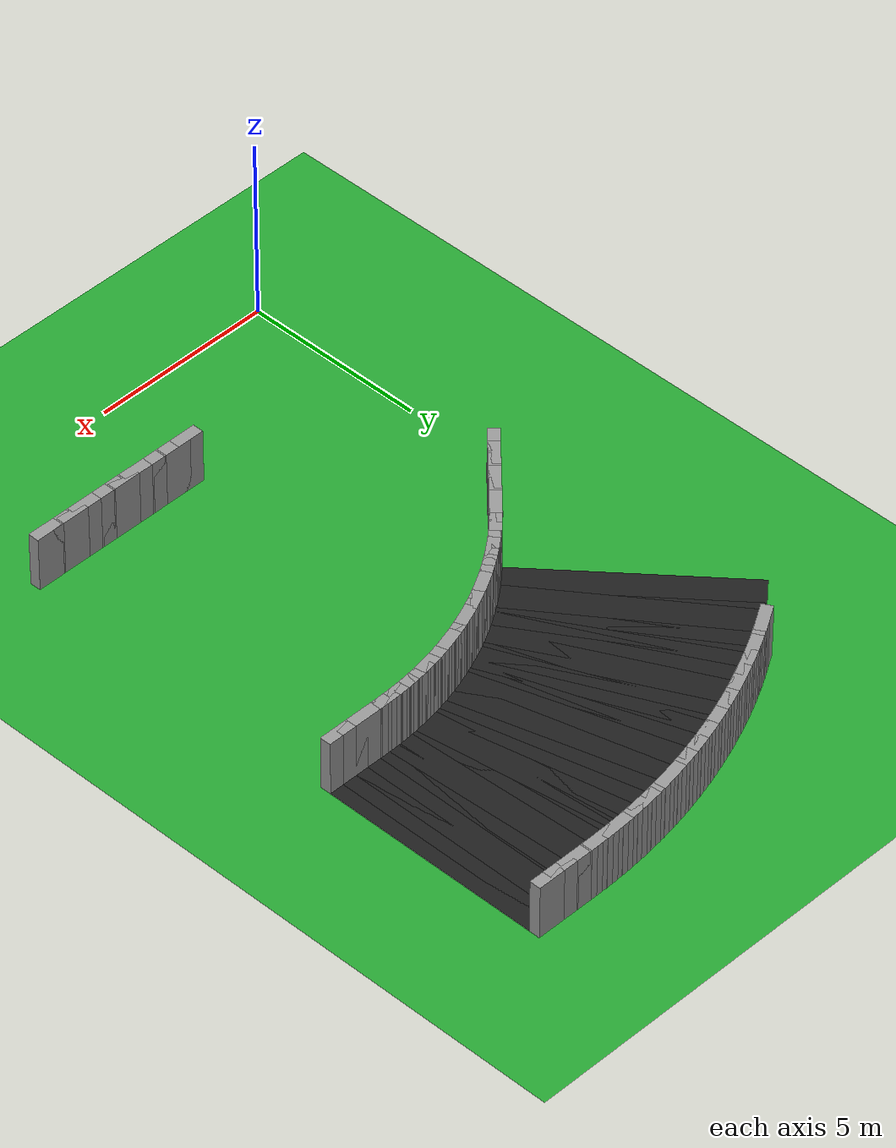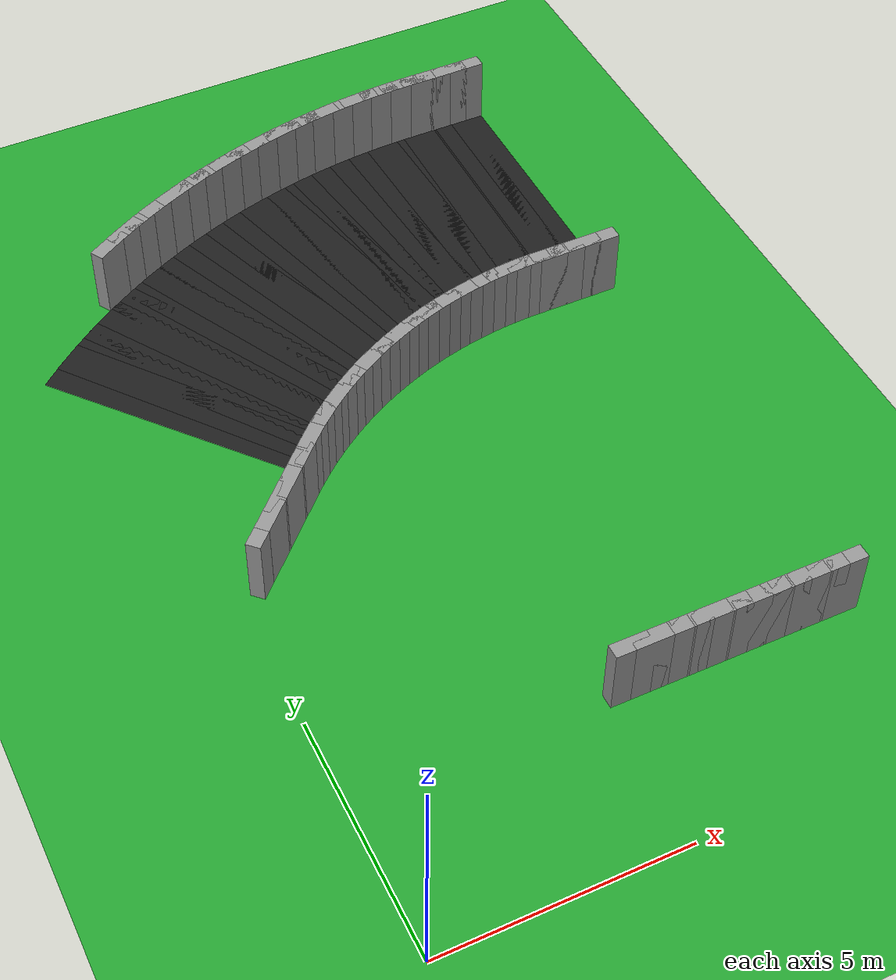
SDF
<sdf version="1.6">
 <world name="loop_road">
  <include><uri>model://sun</uri></include>
  <model name="ground_plane">
   <static>true</static>
   <link name="link">
    <collision name="collision">
     <surface><friction><ode><mu>100</mu><mu2>50</mu2></ode></friction></surface>
     <geometry><plane><normal>0 0 1</normal><size>120 120</size></plane></geometry>
    </collision>
    <visual name="visual">
     <geometry><plane><normal>0 0 1</normal><size>120 120</size></plane></geometry>
     <material>
      <script><uri>file://media/materials/scripts/gazebo.material</uri><name>Gazebo/Green</name></script>
     </material>
    </visual>
   </link>
  </model>
  <model name="curbL_13">
   <static>true</static>
   <pose>5.400 3.150 0.750 0 0 0.00000</pose>
   <link name="link">
    <collision name="collision"><geometry><box><size>0.760 0.300 1.500</size></box></geometry></collision>
    <visual name="visual">
     <geometry><box><size>0.760 0.300 1.500</size></box></geometry>
     <material>
      <script><uri>file://media/materials/scripts/gazebo.material</uri><name>Gazebo/Grey</name></script>
     </material>
    </visual>
   </link>
  </model>
  <model name="curbL_14">
   <static>true</static>
   <pose>5.800 3.150 0.750 0 0 0.00000</pose>
   <link name="link">
    <collision name="collision"><geometry><box><size>0.760 0.300 1.500</size></box></geometry></collision>
    <visual name="visual">
     <geometry><box><size>0.760 0.300 1.500</size></box></geometry>
     <material>
      <script><uri>file://media/materials/scripts/gazebo.material</uri><name>Gazebo/Grey</name></script>
     </material>
    </visual>
   </link>
  </model>
  <model name="curbL_15">
   <static>true</static>
   <pose>6.200 3.150 0.750 0 0 0.00000</pose>
   <link name="link">
    <collision name="collision"><geometry><box><size>0.760 0.300 1.500</size></box></geometry></collision>
    <visual name="visual">
     <geometry><box><size>0.760 0.300 1.500</size></box></geometry>
     <material>
      <script><uri>file://media/materials/scripts/gazebo.material</uri><name>Gazebo/Grey</name></script>
     </material>
    </visual>
   </link>
  </model>
  <model name="curbL_16">
   <static>true</static>
   <pose>6.600 3.150 0.750 0 0 0.00000</pose>
   <link name="link">
    <collision name="collision"><geometry><box><size>0.760 0.300 1.500</size></box></geometry></collision>
    <visual name="visual">
     <geometry><box><size>0.760 0.300 1.500</size></box></geometry>
     <material>
      <script><uri>file://media/materials/scripts/gazebo.material</uri><name>Gazebo/Grey</name></script>
     </material>
    </visual>
   </link>
  </model>
  <model name="curbL_17">
   <static>true</static>
   <pose>7.000 3.150 0.750 0 0 0.00000</pose>
   <link name="link">
    <collision name="collision"><geometry><box><size>0.760 0.300 1.500</size></box></geometry></collision>
    <visual name="visual">
     <geometry><box><size>0.760 0.300 1.500</size></box></geometry>
     <material>
      <script><uri>file://media/materials/scripts/gazebo.material</uri><name>Gazebo/Grey</name></script>
     </material>
    </visual>
   </link>
  </model>
  <model name="curbL_18">
   <static>true</static>
   <pose>7.400 3.150 0.750 0 0 0.00000</pose>
   <link name="link">
    <collision name="collision"><geometry><box><size>0.760 0.300 1.500</size></box></geometry></collision>
    <visual name="visual">
     <geometry><box><size>0.760 0.300 1.500</size></box></geometry>
     <material>
      <script><uri>file://media/materials/scripts/gazebo.material</uri><name>Gazebo/Grey</name></script>
     </material>
    </visual>
   </link>
  </model>
  <model name="curbL_19">
   <static>true</static>
   <pose>7.800 3.150 0.750 0 0 0.00000</pose>
   <link name="link">
    <collision name="collision"><geometry><box><size>0.760 0.300 1.500</size></box></geometry></collision>
    <visual name="visual">
     <geometry><box><size>0.760 0.300 1.500</size></box></geometry>
     <material>
      <script><uri>file://media/materials/scripts/gazebo.material</uri><name>Gazebo/Grey</name></script>
     </material>
    </visual>
   </link>
  </model>
  <model name="curbL_20">
   <static>true</static>
   <pose>8.200 3.150 0.750 0 0 0.00000</pose>
   <link name="link">
    <collision name="collision"><geometry><box><size>0.760 0.300 1.500</size></box></geometry></collision>
    <visual name="visual">
     <geometry><box><size>0.760 0.300 1.500</size></box></geometry>
     <material>
      <script><uri>file://media/materials/scripts/gazebo.material</uri><name>Gazebo/Grey</name></script>
     </material>
    </visual>
   </link>
  </model>
  <model name="curbL_21">
   <static>true</static>
   <pose>8.600 3.150 0.750 0 0 0.00000</pose>
   <link name="link">
    <collision name="collision"><geometry><box><size>0.760 0.300 1.500</size></box></geometry></collision>
    <visual name="visual">
     <geometry><box><size>0.760 0.300 1.500</size></box></geometry>
     <material>
      <script><uri>file://media/materials/scripts/gazebo.material</uri><name>Gazebo/Grey</name></script>
     </material>
    </visual>
   </link>
  </model>
  <model name="curbL_22">
   <static>true</static>
   <pose>9.000 3.150 0.750 0 0 0.00000</pose>
   <link name="link">
    <collision name="collision"><geometry><box><size>0.760 0.300 1.500</size></box></geometry></collision>
    <visual name="visual">
     <geometry><box><size>0.760 0.300 1.500</size></box></geometry>
     <material>
      <script><uri>file://media/materials/scripts/gazebo.material</uri><name>Gazebo/Grey</name></script>
     </material>
    </visual>
   </link>
  </model>
  <model name="curbL_23">
   <static>true</static>
   <pose>9.400 3.150 0.750 0 0 0.00000</pose>
   <link name="link">
    <collision name="collision"><geometry><box><size>0.760 0.300 1.500</size></box></geometry></collision>
    <visual name="visual">
     <geometry><box><size>0.760 0.300 1.500</size></box></geometry>
     <material>
      <script><uri>file://media/materials/scripts/gazebo.material</uri><name>Gazebo/Grey</name></script>
     </material>
    </visual>
   </link>
  </model>
  <model name="curbL_24">
   <static>true</static>
   <pose>9.800 3.150 0.750 0 0 0.00000</pose>
   <link name="link">
    <collision name="collision"><geometry><box><size>0.760 0.300 1.500</size></box></geometry></collision>
    <visual name="visual">
     <geometry><box><size>0.760 0.300 1.500</size></box></geometry>
     <material>
      <script><uri>file://media/materials/scripts/gazebo.material</uri><name>Gazebo/Grey</name></script>
     </material>
    </visual>
   </link>
  </model>
  <model name="asphalt_151">
   <static>true</static>
   <pose>9.885 15.588 0.005 0 0 3.14159</pose>
   <link name="link">
    <visual name="visual">
     <geometry><box><size>0.760 6.000 0.010</size></box></geometry>
     <material>
      <script><uri>file://media/materials/scripts/gazebo.material</uri><name>Gazebo/Black</name></script>
     </material>
    </visual>
   </link>
  </model>
  <model name="curbL_151">
   <static>true</static>
   <pose>9.885 12.438 0.750 0 0 3.14159</pose>
   <link name="link">
    <collision name="collision"><geometry><box><size>0.760 0.300 1.500</size></box></geometry></collision>
    <visual name="visual">
     <geometry><box><size>0.760 0.300 1.500</size></box></geometry>
     <material>
      <script><uri>file://media/materials/scripts/gazebo.material</uri><name>Gazebo/Grey</name></script>
     </material>
    </visual>
   </link>
  </model>
  <model name="curbR_151">
   <static>true</static>
   <pose>9.885 18.738 0.750 0 0 3.14159</pose>
   <link name="link">
    <collision name="collision"><geometry><box><size>0.760 0.300 1.500</size></box></geometry></collision>
    <visual name="visual">
     <geometry><box><size>0.760 0.300 1.500</size></box></geometry>
     <material>
      <script><uri>file://media/materials/scripts/gazebo.material</uri><name>Gazebo/Grey</name></script>
     </material>
    </visual>
   </link>
  </model>
  <model name="asphalt_152">
   <static>true</static>
   <pose>9.485 15.588 0.005 0 0 3.14159</pose>
   <link name="link">
    <visual name="visual">
     <geometry><box><size>0.760 6.000 0.010</size></box></geometry>
     <material>
      <script><uri>file://media/materials/scripts/gazebo.material</uri><name>Gazebo/Black</name></script>
     </material>
    </visual>
   </link>
  </model>
  <model name="curbL_152">
   <static>true</static>
   <pose>9.485 12.438 0.750 0 0 3.14159</pose>
   <link name="link">
    <collision name="collision"><geometry><box><size>0.760 0.300 1.500</size></box></geometry></collision>
    <visual name="visual">
     <geometry><box><size>0.760 0.300 1.500</size></box></geometry>
     <material>
      <script><uri>file://media/materials/scripts/gazebo.material</uri><name>Gazebo/Grey</name></script>
     </material>
    </visual>
   </link>
  </model>
  <model name="curbR_152">
   <static>true</static>
   <pose>9.485 18.738 0.750 0 0 3.14159</pose>
   <link name="link">
    <collision name="collision"><geometry><box><size>0.760 0.300 1.500</size></box></geometry></collision>
    <visual name="visual">
     <geometry><box><size>0.760 0.300 1.500</size></box></geometry>
     <material>
      <script><uri>file://media/materials/scripts/gazebo.material</uri><name>Gazebo/Grey</name></script>
     </material>
    </visual>
   </link>
  </model>
  <model name="asphalt_153">
   <static>true</static>
   <pose>9.085 15.588 0.005 0 0 3.14159</pose>
   <link name="link">
    <visual name="visual">
     <geometry><box><size>0.760 6.000 0.010</size></box></geometry>
     <material>
      <script><uri>file://media/materials/scripts/gazebo.material</uri><name>Gazebo/Black</name></script>
     </material>
    </visual>
   </link>
  </model>
  <model name="curbL_153">
   <static>true</static>
   <pose>9.085 12.438 0.750 0 0 3.14159</pose>
   <link name="link">
    <collision name="collision"><geometry><box><size>0.760 0.300 1.500</size></box></geometry></collision>
    <visual name="visual">
     <geometry><box><size>0.760 0.300 1.500</size></box></geometry>
     <material>
      <script><uri>file://media/materials/scripts/gazebo.material</uri><name>Gazebo/Grey</name></script>
     </material>
    </visual>
   </link>
  </model>
  <model name="curbR_153">
   <static>true</static>
   <pose>9.085 18.738 0.750 0 0 3.14159</pose>
   <link name="link">
    <collision name="collision"><geometry><box><size>0.760 0.300 1.500</size></box></geometry></collision>
    <visual name="visual">
     <geometry><box><size>0.760 0.300 1.500</size></box></geometry>
     <material>
      <script><uri>file://media/materials/scripts/gazebo.material</uri><name>Gazebo/Grey</name></script>
     </material>
    </visual>
   </link>
  </model>
  <model name="asphalt_154">
   <static>true</static>
   <pose>8.685 15.588 0.005 0 0 3.14159</pose>
   <link name="link">
    <visual name="visual">
     <geometry><box><size>0.760 6.000 0.010</size></box></geometry>
     <material>
      <script><uri>file://media/materials/scripts/gazebo.material</uri><name>Gazebo/Black</name></script>
     </material>
    </visual>
   </link>
  </model>
  <model name="curbL_154">
   <static>true</static>
   <pose>8.685 12.438 0.750 0 0 3.14159</pose>
   <link name="link">
    <collision name="collision"><geometry><box><size>0.760 0.300 1.500</size></box></geometry></collision>
    <visual name="visual">
     <geometry><box><size>0.760 0.300 1.500</size></box></geometry>
     <material>
      <script><uri>file://media/materials/scripts/gazebo.material</uri><name>Gazebo/Grey</name></script>
     </material>
    </visual>
   </link>
  </model>
  <model name="curbR_154">
   <static>true</static>
   <pose>8.685 18.738 0.750 0 0 3.14159</pose>
   <link name="link">
    <collision name="collision"><geometry><box><size>0.760 0.300 1.500</size></box></geometry></collision>
    <visual name="visual">
     <geometry><box><size>0.760 0.300 1.500</size></box></geometry>
     <material>
      <script><uri>file://media/materials/scripts/gazebo.material</uri><name>Gazebo/Grey</name></script>
     </material>
    </visual>
   </link>
  </model>
  <model name="asphalt_155">
   <static>true</static>
   <pose>8.288 15.585 0.005 0 0 -3.12523</pose>
   <link name="link">
    <visual name="visual">
     <geometry><box><size>0.753 6.000 0.010</size></box></geometry>
     <material>
      <script><uri>file://media/materials/scripts/gazebo.material</uri><name>Gazebo/Black</name></script>
     </material>
    </visual>
   </link>
  </model>
  <model name="curbL_155">
   <static>true</static>
   <pose>8.340 12.436 0.750 0 0 -3.12523</pose>
   <link name="link">
    <collision name="collision"><geometry><box><size>0.650 0.300 1.500</size></box></geometry></collision>
    <visual name="visual">
     <geometry><box><size>0.650 0.300 1.500</size></box></geometry>
     <material>
      <script><uri>file://media/materials/scripts/gazebo.material</uri><name>Gazebo/Grey</name></script>
     </material>
    </visual>
   </link>
  </model>
  <model name="curbR_155">
   <static>true</static>
   <pose>8.237 18.734 0.750 0 0 -3.12523</pose>
   <link name="link">
    <collision name="collision"><geometry><box><size>0.856 0.300 1.500</size></box></geometry></collision>
    <visual name="visual">
     <geometry><box><size>0.856 0.300 1.500</size></box></geometry>
     <material>
      <script><uri>file://media/materials/scripts/gazebo.material</uri><name>Gazebo/Grey</name></script>
     </material>
    </visual>
   </link>
  </model>
  <model name="asphalt_156">
   <static>true</static>
   <pose>7.896 15.572 0.005 0 0 -3.09251</pose>
   <link name="link">
    <visual name="visual">
     <geometry><box><size>0.753 6.000 0.010</size></box></geometry>
     <material>
      <script><uri>file://media/materials/scripts/gazebo.material</uri><name>Gazebo/Black</name></script>
     </material>
    </visual>
   </link>
  </model>
  <model name="curbL_156">
   <static>true</static>
   <pose>8.050 12.426 0.750 0 0 -3.09251</pose>
   <link name="link">
    <collision name="collision"><geometry><box><size>0.650 0.300 1.500</size></box></geometry></collision>
    <visual name="visual">
     <geometry><box><size>0.650 0.300 1.500</size></box></geometry>
     <material>
      <script><uri>file://media/materials/scripts/gazebo.material</uri><name>Gazebo/Grey</name></script>
     </material>
    </visual>
   </link>
  </model>
  <model name="curbR_156">
   <static>true</static>
   <pose>7.741 18.718 0.750 0 0 -3.09251</pose>
   <link name="link">
    <collision name="collision"><geometry><box><size>0.856 0.300 1.500</size></box></geometry></collision>
    <visual name="visual">
     <geometry><box><size>0.856 0.300 1.500</size></box></geometry>
     <material>
      <script><uri>file://media/materials/scripts/gazebo.material</uri><name>Gazebo/Grey</name></script>
     </material>
    </visual>
   </link>
  </model>
  <model name="asphalt_157">
   <static>true</static>
   <pose>7.504 15.547 0.005 0 0 -3.05978</pose>
   <link name="link">
    <visual name="visual">
     <geometry><box><size>0.753 6.000 0.010</size></box></geometry>
     <material>
      <script><uri>file://media/materials/scripts/gazebo.material</uri><name>Gazebo/Black</name></script>
     </material>
    </visual>
   </link>
  </model>
  <model name="curbL_157">
   <static>true</static>
   <pose>7.762 12.408 0.750 0 0 -3.05978</pose>
   <link name="link">
    <collision name="collision"><geometry><box><size>0.650 0.300 1.500</size></box></geometry></collision>
    <visual name="visual">
     <geometry><box><size>0.650 0.300 1.500</size></box></geometry>
     <material>
      <script><uri>file://media/materials/scripts/gazebo.material</uri><name>Gazebo/Grey</name></script>
     </material>
    </visual>
   </link>
  </model>
  <model name="curbR_157">
   <static>true</static>
   <pose>7.247 18.686 0.750 0 0 -3.05978</pose>
   <link name="link">
    <collision name="collision"><geometry><box><size>0.856 0.300 1.500</size></box></geometry></collision>
    <visual name="visual">
     <geometry><box><size>0.856 0.300 1.500</size></box></geometry>
     <material>
      <script><uri>file://media/materials/scripts/gazebo.material</uri><name>Gazebo/Grey</name></script>
     </material>
    </visual>
   </link>
  </model>
  <model name="asphalt_158">
   <static>true</static>
   <pose>7.113 15.508 0.005 0 0 -3.02706</pose>
   <link name="link">
    <visual name="visual">
     <geometry><box><size>0.753 6.000 0.010</size></box></geometry>
     <material>
      <script><uri>file://media/materials/scripts/gazebo.material</uri><name>Gazebo/Black</name></script>
     </material>
    </visual>
   </link>
  </model>
  <model name="curbL_158">
   <static>true</static>
   <pose>7.473 12.379 0.750 0 0 -3.02706</pose>
   <link name="link">
    <collision name="collision"><geometry><box><size>0.650 0.300 1.500</size></box></geometry></collision>
    <visual name="visual">
     <geometry><box><size>0.650 0.300 1.500</size></box></geometry>
     <material>
      <script><uri>file://media/materials/scripts/gazebo.material</uri><name>Gazebo/Grey</name></script>
     </material>
    </visual>
   </link>
  </model>
  <model name="curbR_158">
   <static>true</static>
   <pose>6.753 18.637 0.750 0 0 -3.02706</pose>
   <link name="link">
    <collision name="collision"><geometry><box><size>0.856 0.300 1.500</size></box></geometry></collision>
    <visual name="visual">
     <geometry><box><size>0.856 0.300 1.500</size></box></geometry>
     <material>
      <script><uri>file://media/materials/scripts/gazebo.material</uri><name>Gazebo/Grey</name></script>
     </material>
    </visual>
   </link>
  </model>
  <model name="asphalt_159">
   <static>true</static>
   <pose>6.724 15.457 0.005 0 0 -2.99433</pose>
   <link name="link">
    <visual name="visual">
     <geometry><box><size>0.753 6.000 0.010</size></box></geometry>
     <material>
      <script><uri>file://media/materials/scripts/gazebo.material</uri><name>Gazebo/Black</name></script>
     </material>
    </visual>
   </link>
  </model>
  <model name="curbL_159">
   <static>true</static>
   <pose>7.186 12.341 0.750 0 0 -2.99433</pose>
   <link name="link">
    <collision name="collision"><geometry><box><size>0.650 0.300 1.500</size></box></geometry></collision>
    <visual name="visual">
     <geometry><box><size>0.650 0.300 1.500</size></box></geometry>
     <material>
      <script><uri>file://media/materials/scripts/gazebo.material</uri><name>Gazebo/Grey</name></script>
     </material>
    </visual>
   </link>
  </model>
  <model name="curbR_159">
   <static>true</static>
   <pose>6.262 18.572 0.750 0 0 -2.99433</pose>
   <link name="link">
    <collision name="collision"><geometry><box><size>0.856 0.300 1.500</size></box></geometry></collision>
    <visual name="visual">
     <geometry><box><size>0.856 0.300 1.500</size></box></geometry>
     <material>
      <script><uri>file://media/materials/scripts/gazebo.material</uri><name>Gazebo/Grey</name></script>
     </material>
    </visual>
   </link>
  </model>
  <model name="asphalt_160">
   <static>true</static>
   <pose>6.337 15.393 0.005 0 0 -2.96161</pose>
   <link name="link">
    <visual name="visual">
     <geometry><box><size>0.753 6.000 0.010</size></box></geometry>
     <material>
      <script><uri>file://media/materials/scripts/gazebo.material</uri><name>Gazebo/Black</name></script>
     </material>
    </visual>
   </link>
  </model>
  <model name="curbL_160">
   <static>true</static>
   <pose>6.901 12.294 0.750 0 0 -2.96161</pose>
   <link name="link">
    <collision name="collision"><geometry><box><size>0.650 0.300 1.500</size></box></geometry></collision>
    <visual name="visual">
     <geometry><box><size>0.650 0.300 1.500</size></box></geometry>
     <material>
      <script><uri>file://media/materials/scripts/gazebo.material</uri><name>Gazebo/Grey</name></script>
     </material>
    </visual>
   </link>
  </model>
  <model name="curbR_160">
   <static>true</static>
   <pose>5.773 18.492 0.750 0 0 -2.96161</pose>
   <link name="link">
    <collision name="collision"><geometry><box><size>0.856 0.300 1.500</size></box></geometry></collision>
    <visual name="visual">
     <geometry><box><size>0.856 0.300 1.500</size></box></geometry>
     <material>
      <script><uri>file://media/materials/scripts/gazebo.material</uri><name>Gazebo/Grey</name></script>
     </material>
    </visual>
   </link>
  </model>
  <model name="asphalt_161">
   <static>true</static>
   <pose>5.952 15.316 0.005 0 0 -2.92888</pose>
   <link name="link">
    <visual name="visual">
     <geometry><box><size>0.753 6.000 0.010</size></box></geometry>
     <material>
      <script><uri>file://media/materials/scripts/gazebo.material</uri><name>Gazebo/Black</name></script>
     </material>
    </visual>
   </link>
  </model>
  <model name="curbL_161">
   <static>true</static>
   <pose>6.616 12.238 0.750 0 0 -2.92888</pose>
   <link name="link">
    <collision name="collision"><geometry><box><size>0.650 0.300 1.500</size></box></geometry></collision>
    <visual name="visual">
     <geometry><box><size>0.650 0.300 1.500</size></box></geometry>
     <material>
      <script><uri>file://media/materials/scripts/gazebo.material</uri><name>Gazebo/Grey</name></script>
     </material>
    </visual>
   </link>
  </model>
  <model name="curbR_161">
   <static>true</static>
   <pose>5.287 18.395 0.750 0 0 -2.92888</pose>
   <link name="link">
    <collision name="collision"><geometry><box><size>0.856 0.300 1.500</size></box></geometry></collision>
    <visual name="visual">
     <geometry><box><size>0.856 0.300 1.500</size></box></geometry>
     <material>
      <script><uri>file://media/materials/scripts/gazebo.material</uri><name>Gazebo/Grey</name></script>
     </material>
    </visual>
   </link>
  </model>
  <model name="asphalt_162">
   <static>true</static>
   <pose>5.569 15.227 0.005 0 0 -2.89616</pose>
   <link name="link">
    <visual name="visual">
     <geometry><box><size>0.753 6.000 0.010</size></box></geometry>
     <material>
      <script><uri>file://media/materials/scripts/gazebo.material</uri><name>Gazebo/Black</name></script>
     </material>
    </visual>
   </link>
  </model>
  <model name="curbL_162">
   <static>true</static>
   <pose>6.334 12.172 0.750 0 0 -2.89616</pose>
   <link name="link">
    <collision name="collision"><geometry><box><size>0.650 0.300 1.500</size></box></geometry></collision>
    <visual name="visual">
     <geometry><box><size>0.650 0.300 1.500</size></box></geometry>
     <material>
      <script><uri>file://media/materials/scripts/gazebo.material</uri><name>Gazebo/Grey</name></script>
     </material>
    </visual>
   </link>
  </model>
  <model name="curbR_162">
   <static>true</static>
   <pose>4.804 18.282 0.750 0 0 -2.89616</pose>
   <link name="link">
    <collision name="collision"><geometry><box><size>0.856 0.300 1.500</size></box></geometry></collision>
    <visual name="visual">
     <geometry><box><size>0.856 0.300 1.500</size></box></geometry>
     <material>
      <script><uri>file://media/materials/scripts/gazebo.material</uri><name>Gazebo/Grey</name></script>
     </material>
    </visual>
   </link>
  </model>
  <model name="asphalt_163">
   <static>true</static>
   <pose>5.190 15.125 0.005 0 0 -2.86343</pose>
   <link name="link">
    <visual name="visual">
     <geometry><box><size>0.753 6.000 0.010</size></box></geometry>
     <material>
      <script><uri>file://media/materials/scripts/gazebo.material</uri><name>Gazebo/Black</name></script>
     </material>
    </visual>
   </link>
  </model>
  <model name="curbL_163">
   <static>true</static>
   <pose>6.055 12.097 0.750 0 0 -2.86343</pose>
   <link name="link">
    <collision name="collision"><geometry><box><size>0.650 0.300 1.500</size></box></geometry></collision>
    <visual name="visual">
     <geometry><box><size>0.650 0.300 1.500</size></box></geometry>
     <material>
      <script><uri>file://media/materials/scripts/gazebo.material</uri><name>Gazebo/Grey</name></script>
     </material>
    </visual>
   </link>
  </model>
  <model name="curbR_163">
   <static>true</static>
   <pose>4.325 18.154 0.750 0 0 -2.86343</pose>
   <link name="link">
    <collision name="collision"><geometry><box><size>0.856 0.300 1.500</size></box></geometry></collision>
    <visual name="visual">
     <geometry><box><size>0.856 0.300 1.500</size></box></geometry>
     <material>
      <script><uri>file://media/materials/scripts/gazebo.material</uri><name>Gazebo/Grey</name></script>
     </material>
    </visual>
   </link>
  </model>
  <model name="asphalt_164">
   <static>true</static>
   <pose>4.814 15.011 0.005 0 0 -2.83071</pose>
   <link name="link">
    <visual name="visual">
     <geometry><box><size>0.753 6.000 0.010</size></box></geometry>
     <material>
      <script><uri>file://media/materials/scripts/gazebo.material</uri><name>Gazebo/Black</name></script>
     </material>
    </visual>
   </link>
  </model>
  <model name="curbL_164">
   <static>true</static>
   <pose>5.778 12.013 0.750 0 0 -2.83071</pose>
   <link name="link">
    <collision name="collision"><geometry><box><size>0.650 0.300 1.500</size></box></geometry></collision>
    <visual name="visual">
     <geometry><box><size>0.650 0.300 1.500</size></box></geometry>
     <material>
      <script><uri>file://media/materials/scripts/gazebo.material</uri><name>Gazebo/Grey</name></script>
     </material>
    </visual>
   </link>
  </model>
  <model name="curbR_164">
   <static>true</static>
   <pose>3.851 18.010 0.750 0 0 -2.83071</pose>
   <link name="link">
    <collision name="collision"><geometry><box><size>0.856 0.300 1.500</size></box></geometry></collision>
    <visual name="visual">
     <geometry><box><size>0.856 0.300 1.500</size></box></geometry>
     <material>
      <script><uri>file://media/materials/scripts/gazebo.material</uri><name>Gazebo/Grey</name></script>
     </material>
    </visual>
   </link>
  </model>
  <model name="asphalt_165">
   <static>true</static>
   <pose>4.442 14.885 0.005 0 0 -2.79798</pose>
   <link name="link">
    <visual name="visual">
     <geometry><box><size>0.753 6.000 0.010</size></box></geometry>
     <material>
      <script><uri>file://media/materials/scripts/gazebo.material</uri><name>Gazebo/Black</name></script>
     </material>
    </visual>
   </link>
  </model>
  <model name="curbL_165">
   <static>true</static>
   <pose>5.503 11.920 0.750 0 0 -2.79798</pose>
   <link name="link">
    <collision name="collision"><geometry><box><size>0.650 0.300 1.500</size></box></geometry></collision>
    <visual name="visual">
     <geometry><box><size>0.650 0.300 1.500</size></box></geometry>
     <material>
      <script><uri>file://media/materials/scripts/gazebo.material</uri><name>Gazebo/Grey</name></script>
     </material>
    </visual>
   </link>
  </model>
  <model name="curbR_165">
   <static>true</static>
   <pose>3.381 17.851 0.750 0 0 -2.79798</pose>
   <link name="link">
    <collision name="collision"><geometry><box><size>0.856 0.300 1.500</size></box></geometry></collision>
    <visual name="visual">
     <geometry><box><size>0.856 0.300 1.500</size></box></geometry>
     <material>
      <script><uri>file://media/materials/scripts/gazebo.material</uri><name>Gazebo/Grey</name></script>
     </material>
    </visual>
   </link>
  </model>
  <model name="asphalt_166">
   <static>true</static>
   <pose>4.075 14.747 0.005 0 0 -2.76526</pose>
   <link name="link">
    <visual name="visual">
     <geometry><box><size>0.753 6.000 0.010</size></box></geometry>
     <material>
      <script><uri>file://media/materials/scripts/gazebo.material</uri><name>Gazebo/Black</name></script>
     </material>
    </visual>
   </link>
  </model>
  <model name="curbL_166">
   <static>true</static>
   <pose>5.232 11.818 0.750 0 0 -2.76526</pose>
   <link name="link">
    <collision name="collision"><geometry><box><size>0.650 0.300 1.500</size></box></geometry></collision>
    <visual name="visual">
     <geometry><box><size>0.650 0.300 1.500</size></box></geometry>
     <material>
      <script><uri>file://media/materials/scripts/gazebo.material</uri><name>Gazebo/Grey</name></script>
     </material>
    </visual>
   </link>
  </model>
  <model name="curbR_166">
   <static>true</static>
   <pose>2.917 17.676 0.750 0 0 -2.76526</pose>
   <link name="link">
    <collision name="collision"><geometry><box><size>0.856 0.300 1.500</size></box></geometry></collision>
    <visual name="visual">
     <geometry><box><size>0.856 0.300 1.500</size></box></geometry>
     <material>
      <script><uri>file://media/materials/scripts/gazebo.material</uri><name>Gazebo/Grey</name></script>
     </material>
    </visual>
   </link>
  </model>
  <model name="asphalt_167">
   <static>true</static>
   <pose>3.712 14.597 0.005 0 0 -2.73253</pose>
   <link name="link">
    <visual name="visual">
     <geometry><box><size>0.753 6.000 0.010</size></box></geometry>
     <material>
      <script><uri>file://media/materials/scripts/gazebo.material</uri><name>Gazebo/Black</name></script>
     </material>
    </visual>
   </link>
  </model>
  <model name="curbL_167">
   <static>true</static>
   <pose>4.965 11.707 0.750 0 0 -2.73253</pose>
   <link name="link">
    <collision name="collision"><geometry><box><size>0.650 0.300 1.500</size></box></geometry></collision>
    <visual name="visual">
     <geometry><box><size>0.650 0.300 1.500</size></box></geometry>
     <material>
      <script><uri>file://media/materials/scripts/gazebo.material</uri><name>Gazebo/Grey</name></script>
     </material>
    </visual>
   </link>
  </model>
  <model name="curbR_167">
   <static>true</static>
   <pose>2.459 17.486 0.750 0 0 -2.73253</pose>
   <link name="link">
    <collision name="collision"><geometry><box><size>0.856 0.300 1.500</size></box></geometry></collision>
    <visual name="visual">
     <geometry><box><size>0.856 0.300 1.500</size></box></geometry>
     <material>
      <script><uri>file://media/materials/scripts/gazebo.material</uri><name>Gazebo/Grey</name></script>
     </material>
    </visual>
   </link>
  </model>
  <model name="asphalt_168">
   <static>true</static>
   <pose>3.354 14.435 0.005 0 0 -2.69981</pose>
   <link name="link">
    <visual name="visual">
     <geometry><box><size>0.753 6.000 0.010</size></box></geometry>
     <material>
      <script><uri>file://media/materials/scripts/gazebo.material</uri><name>Gazebo/Black</name></script>
     </material>
    </visual>
   </link>
  </model>
  <model name="curbL_168">
   <static>true</static>
   <pose>4.701 11.587 0.750 0 0 -2.69981</pose>
   <link name="link">
    <collision name="collision"><geometry><box><size>0.650 0.300 1.500</size></box></geometry></collision>
    <visual name="visual">
     <geometry><box><size>0.650 0.300 1.500</size></box></geometry>
     <material>
      <script><uri>file://media/materials/scripts/gazebo.material</uri><name>Gazebo/Grey</name></script>
     </material>
    </visual>
   </link>
  </model>
  <model name="curbR_168">
   <static>true</static>
   <pose>2.008 17.282 0.750 0 0 -2.69981</pose>
   <link name="link">
    <collision name="collision"><geometry><box><size>0.856 0.300 1.500</size></box></geometry></collision>
    <visual name="visual">
     <geometry><box><size>0.856 0.300 1.500</size></box></geometry>
     <material>
      <script><uri>file://media/materials/scripts/gazebo.material</uri><name>Gazebo/Grey</name></script>
     </material>
    </visual>
   </link>
  </model>
  <model name="asphalt_169">
   <static>true</static>
   <pose>3.002 14.261 0.005 0 0 -2.66708</pose>
   <link name="link">
    <visual name="visual">
     <geometry><box><size>0.753 6.000 0.010</size></box></geometry>
     <material>
      <script><uri>file://media/materials/scripts/gazebo.material</uri><name>Gazebo/Black</name></script>
     </material>
    </visual>
   </link>
  </model>
  <model name="curbL_169">
   <static>true</static>
   <pose>4.441 11.459 0.750 0 0 -2.66708</pose>
   <link name="link">
    <collision name="collision"><geometry><box><size>0.650 0.300 1.500</size></box></geometry></collision>
    <visual name="visual">
     <geometry><box><size>0.650 0.300 1.500</size></box></geometry>
     <material>
      <script><uri>file://media/materials/scripts/gazebo.material</uri><name>Gazebo/Grey</name></script>
     </material>
    </visual>
   </link>
  </model>
  <model name="curbR_169">
   <static>true</static>
   <pose>1.563 17.063 0.750 0 0 -2.66708</pose>
   <link name="link">
    <collision name="collision"><geometry><box><size>0.856 0.300 1.500</size></box></geometry></collision>
    <visual name="visual">
     <geometry><box><size>0.856 0.300 1.500</size></box></geometry>
     <material>
      <script><uri>file://media/materials/scripts/gazebo.material</uri><name>Gazebo/Grey</name></script>
     </material>
    </visual>
   </link>
  </model>
  <model name="asphalt_170">
   <static>true</static>
   <pose>2.656 14.076 0.005 0 0 -2.63436</pose>
   <link name="link">
    <visual name="visual">
     <geometry><box><size>0.753 6.000 0.010</size></box></geometry>
     <material>
      <script><uri>file://media/materials/scripts/gazebo.material</uri><name>Gazebo/Black</name></script>
     </material>
    </visual>
   </link>
  </model>
  <model name="curbL_170">
   <static>true</static>
   <pose>4.186 11.323 0.750 0 0 -2.63436</pose>
   <link name="link">
    <collision name="collision"><geometry><box><size>0.650 0.300 1.500</size></box></geometry></collision>
    <visual name="visual">
     <geometry><box><size>0.650 0.300 1.500</size></box></geometry>
     <material>
      <script><uri>file://media/materials/scripts/gazebo.material</uri><name>Gazebo/Grey</name></script>
     </material>
    </visual>
   </link>
  </model>
  <model name="curbR_170">
   <static>true</static>
   <pose>1.126 16.829 0.750 0 0 -2.63436</pose>
   <link name="link">
    <collision name="collision"><geometry><box><size>0.856 0.300 1.500</size></box></geometry></collision>
    <visual name="visual">
     <geometry><box><size>0.856 0.300 1.500</size></box></geometry>
     <material>
      <script><uri>file://media/materials/scripts/gazebo.material</uri><name>Gazebo/Grey</name></script>
     </material>
    </visual>
   </link>
  </model>
  <model name="asphalt_171">
   <static>true</static>
   <pose>2.316 13.880 0.005 0 0 -2.60163</pose>
   <link name="link">
    <visual name="visual">
     <geometry><box><size>0.753 6.000 0.010</size></box></geometry>
     <material>
      <script><uri>file://media/materials/scripts/gazebo.material</uri><name>Gazebo/Black</name></script>
     </material>
    </visual>
   </link>
  </model>
  <model name="curbL_171">
   <static>true</static>
   <pose>3.935 11.178 0.750 0 0 -2.60163</pose>
   <link name="link">
    <collision name="collision"><geometry><box><size>0.650 0.300 1.500</size></box></geometry></collision>
    <visual name="visual">
     <geometry><box><size>0.650 0.300 1.500</size></box></geometry>
     <material>
      <script><uri>file://media/materials/scripts/gazebo.material</uri><name>Gazebo/Grey</name></script>
     </material>
    </visual>
   </link>
  </model>
  <model name="curbR_171">
   <static>true</static>
   <pose>0.697 16.581 0.750 0 0 -2.60163</pose>
   <link name="link">
    <collision name="collision"><geometry><box><size>0.856 0.300 1.500</size></box></geometry></collision>
    <visual name="visual">
     <geometry><box><size>0.856 0.300 1.500</size></box></geometry>
     <material>
      <script><uri>file://media/materials/scripts/gazebo.material</uri><name>Gazebo/Grey</name></script>
     </material>
    </visual>
   </link>
  </model>
  <model name="asphalt_172">
   <static>true</static>
   <pose>1.983 13.672 0.005 0 0 -2.56891</pose>
   <link name="link">
    <visual name="visual">
     <geometry><box><size>0.753 6.000 0.010</size></box></geometry>
     <material>
      <script><uri>file://media/materials/scripts/gazebo.material</uri><name>Gazebo/Black</name></script>
     </material>
    </visual>
   </link>
  </model>
  <model name="curbL_172">
   <static>true</static>
   <pose>3.689 11.025 0.750 0 0 -2.56891</pose>
   <link name="link">
    <collision name="collision"><geometry><box><size>0.650 0.300 1.500</size></box></geometry></collision>
    <visual name="visual">
     <geometry><box><size>0.650 0.300 1.500</size></box></geometry>
     <material>
      <script><uri>file://media/materials/scripts/gazebo.material</uri><name>Gazebo/Grey</name></script>
     </material>
    </visual>
   </link>
  </model>
  <model name="asphalt_173">
   <static>true</static>
   <pose>1.656 13.454 0.005 0 0 -2.53618</pose>
   <link name="link">
    <visual name="visual">
     <geometry><box><size>0.753 6.000 0.010</size></box></geometry>
     <material>
      <script><uri>file://media/materials/scripts/gazebo.material</uri><name>Gazebo/Black</name></script>
     </material>
    </visual>
   </link>
  </model>
  <model name="curbL_173">
   <static>true</static>
   <pose>3.449 10.864 0.750 0 0 -2.53618</pose>
   <link name="link">
    <collision name="collision"><geometry><box><size>0.650 0.300 1.500</size></box></geometry></collision>
    <visual name="visual">
     <geometry><box><size>0.650 0.300 1.500</size></box></geometry>
     <material>
      <script><uri>file://media/materials/scripts/gazebo.material</uri><name>Gazebo/Grey</name></script>
     </material>
    </visual>
   </link>
  </model>
  <model name="asphalt_174">
   <static>true</static>
   <pose>1.337 13.225 0.005 0 0 -2.50346</pose>
   <link name="link">
    <visual name="visual">
     <geometry><box><size>0.753 6.000 0.010</size></box></geometry>
     <material>
      <script><uri>file://media/materials/scripts/gazebo.material</uri><name>Gazebo/Black</name></script>
     </material>
    </visual>
   </link>
  </model>
  <model name="curbL_174">
   <static>true</static>
   <pose>3.213 10.696 0.750 0 0 -2.50346</pose>
   <link name="link">
    <collision name="collision"><geometry><box><size>0.650 0.300 1.500</size></box></geometry></collision>
    <visual name="visual">
     <geometry><box><size>0.650 0.300 1.500</size></box></geometry>
     <material>
      <script><uri>file://media/materials/scripts/gazebo.material</uri><name>Gazebo/Grey</name></script>
     </material>
    </visual>
   </link>
  </model>
  <model name="asphalt_175">
   <static>true</static>
   <pose>1.025 12.986 0.005 0 0 -2.47073</pose>
   <link name="link">
    <visual name="visual">
     <geometry><box><size>0.753 6.000 0.010</size></box></geometry>
     <material>
      <script><uri>file://media/materials/scripts/gazebo.material</uri><name>Gazebo/Black</name></script>
     </material>
    </visual>
   </link>
  </model>
  <model name="curbL_175">
   <static>true</static>
   <pose>2.983 10.519 0.750 0 0 -2.47073</pose>
   <link name="link">
    <collision name="collision"><geometry><box><size>0.650 0.300 1.500</size></box></geometry></collision>
    <visual name="visual">
     <geometry><box><size>0.650 0.300 1.500</size></box></geometry>
     <material>
      <script><uri>file://media/materials/scripts/gazebo.material</uri><name>Gazebo/Grey</name></script>
     </material>
    </visual>
   </link>
  </model>
  <model name="asphalt_176">
   <static>true</static>
   <pose>0.722 12.737 0.005 0 0 -2.43801</pose>
   <link name="link">
    <visual name="visual">
     <geometry><box><size>0.753 6.000 0.010</size></box></geometry>
     <material>
      <script><uri>file://media/materials/scripts/gazebo.material</uri><name>Gazebo/Black</name></script>
     </material>
    </visual>
   </link>
  </model>
  <model name="curbL_176">
   <static>true</static>
   <pose>2.760 10.336 0.750 0 0 -2.43801</pose>
   <link name="link">
    <collision name="collision"><geometry><box><size>0.650 0.300 1.500</size></box></geometry></collision>
    <visual name="visual">
     <geometry><box><size>0.650 0.300 1.500</size></box></geometry>
     <material>
      <script><uri>file://media/materials/scripts/gazebo.material</uri><name>Gazebo/Grey</name></script>
     </material>
    </visual>
   </link>
  </model>
  <model name="curbL_177">
   <static>true</static>
   <pose>2.542 10.145 0.750 0 0 -2.40528</pose>
   <link name="link">
    <collision name="collision"><geometry><box><size>0.650 0.300 1.500</size></box></geometry></collision>
    <visual name="visual">
     <geometry><box><size>0.650 0.300 1.500</size></box></geometry>
     <material>
      <script><uri>file://media/materials/scripts/gazebo.material</uri><name>Gazebo/Grey</name></script>
     </material>
    </visual>
   </link>
  </model>
  <model name="curbL_178">
   <static>true</static>
   <pose>2.330 9.947 0.750 0 0 -2.37256</pose>
   <link name="link">
    <collision name="collision"><geometry><box><size>0.650 0.300 1.500</size></box></geometry></collision>
    <visual name="visual">
     <geometry><box><size>0.650 0.300 1.500</size></box></geometry>
     <material>
      <script><uri>file://media/materials/scripts/gazebo.material</uri><name>Gazebo/Grey</name></script>
     </material>
    </visual>
   </link>
  </model>
  <model name="curbL_179">
   <static>true</static>
   <pose>2.079 9.699 0.750 0 0 -2.35619</pose>
   <link name="link">
    <collision name="collision"><geometry><box><size>0.777 0.300 1.500</size></box></geometry></collision>
    <visual name="visual">
     <geometry><box><size>0.777 0.300 1.500</size></box></geometry>
     <material>
      <script><uri>file://media/materials/scripts/gazebo.material</uri><name>Gazebo/Grey</name></script>
     </material>
    </visual>
   </link>
  </model>
  <model name="curbL_180">
   <static>true</static>
   <pose>1.784 9.404 0.750 0 0 -2.35619</pose>
   <link name="link">
    <collision name="collision"><geometry><box><size>0.777 0.300 1.500</size></box></geometry></collision>
    <visual name="visual">
     <geometry><box><size>0.777 0.300 1.500</size></box></geometry>
     <material>
      <script><uri>file://media/materials/scripts/gazebo.material</uri><name>Gazebo/Grey</name></script>
     </material>
    </visual>
   </link>
  </model>
  <model name="curbL_181">
   <static>true</static>
   <pose>1.490 9.109 0.750 0 0 -2.35619</pose>
   <link name="link">
    <collision name="collision"><geometry><box><size>0.777 0.300 1.500</size></box></geometry></collision>
    <visual name="visual">
     <geometry><box><size>0.777 0.300 1.500</size></box></geometry>
     <material>
      <script><uri>file://media/materials/scripts/gazebo.material</uri><name>Gazebo/Grey</name></script>
     </material>
    </visual>
   </link>
  </model>
  <model name="curbL_182">
   <static>true</static>
   <pose>1.195 8.815 0.750 0 0 -2.35619</pose>
   <link name="link">
    <collision name="collision"><geometry><box><size>0.777 0.300 1.500</size></box></geometry></collision>
    <visual name="visual">
     <geometry><box><size>0.777 0.300 1.500</size></box></geometry>
     <material>
      <script><uri>file://media/materials/scripts/gazebo.material</uri><name>Gazebo/Grey</name></script>
     </material>
    </visual>
   </link>
  </model>
  <model name="curbL_183">
   <static>true</static>
   <pose>0.901 8.520 0.750 0 0 -2.35619</pose>
   <link name="link">
    <collision name="collision"><geometry><box><size>0.777 0.300 1.500</size></box></geometry></collision>
    <visual name="visual">
     <geometry><box><size>0.777 0.300 1.500</size></box></geometry>
     <material>
      <script><uri>file://media/materials/scripts/gazebo.material</uri><name>Gazebo/Grey</name></script>
     </material>
    </visual>
   </link>
  </model>
  <model name="curbL_184">
   <static>true</static>
   <pose>0.606 8.226 0.750 0 0 -2.35619</pose>
   <link name="link">
    <collision name="collision"><geometry><box><size>0.777 0.300 1.500</size></box></geometry></collision>
    <visual name="visual">
     <geometry><box><size>0.777 0.300 1.500</size></box></geometry>
     <material>
      <script><uri>file://media/materials/scripts/gazebo.material</uri><name>Gazebo/Grey</name></script>
     </material>
    </visual>
   </link>
  </model>
 </world>
</sdf>
